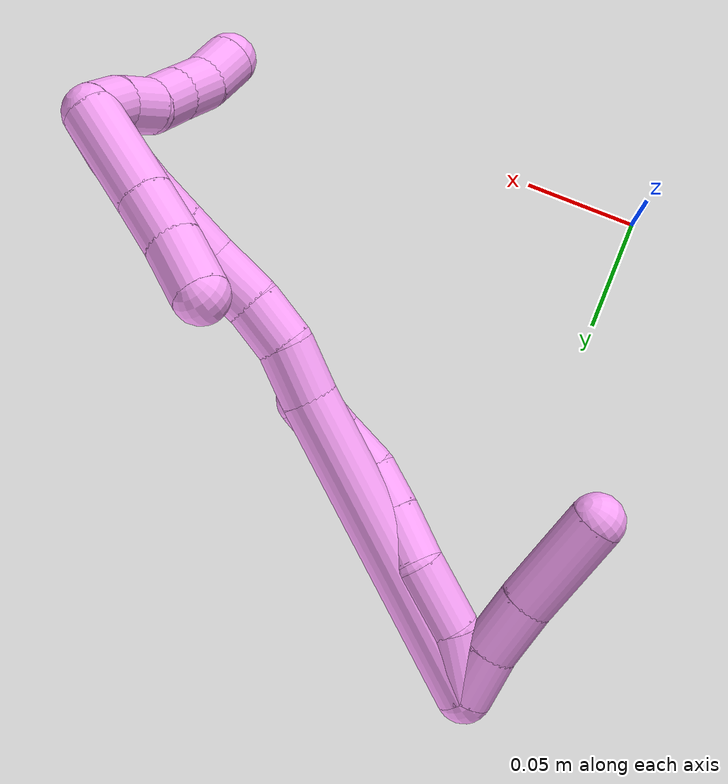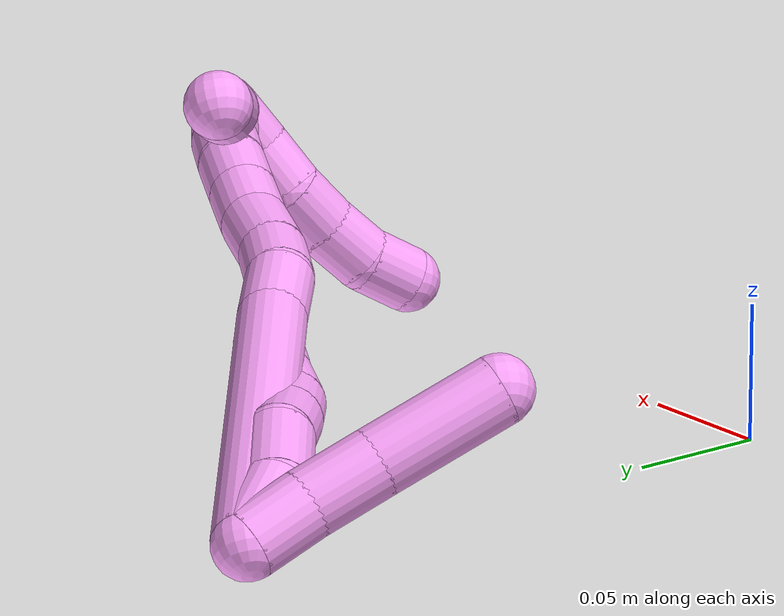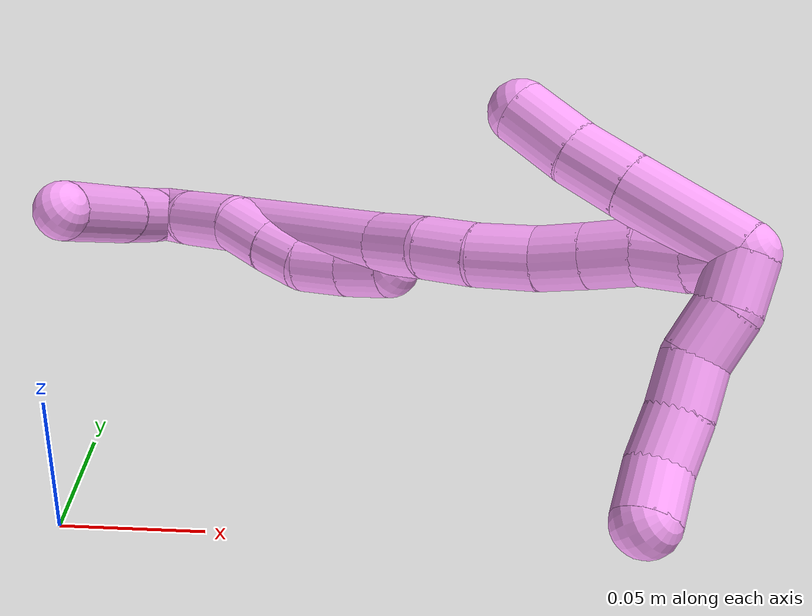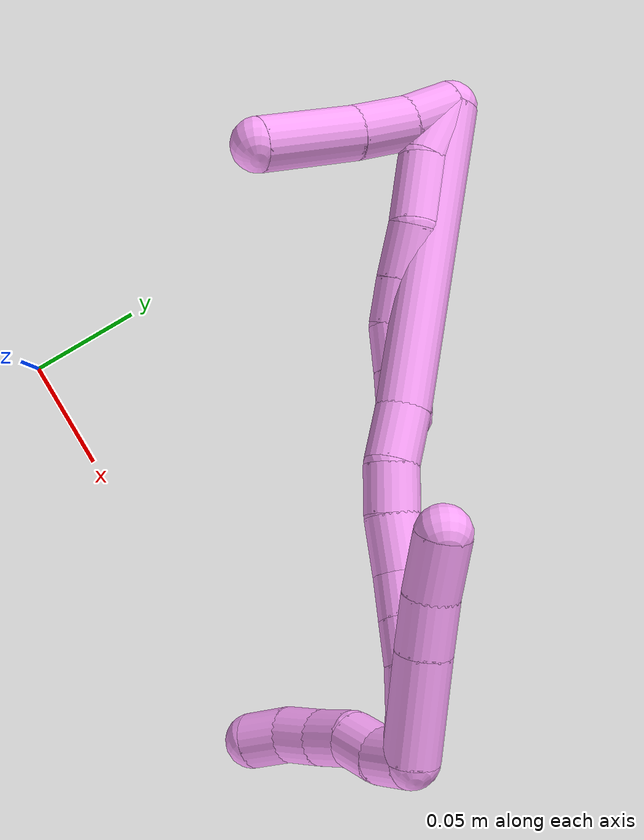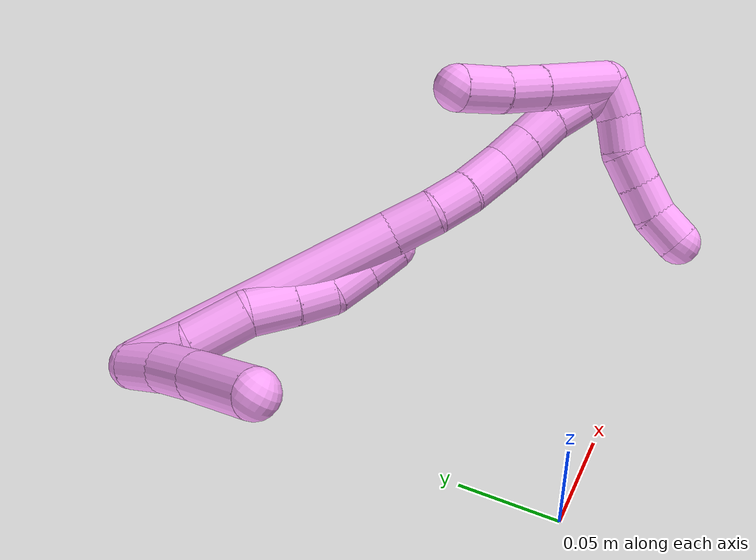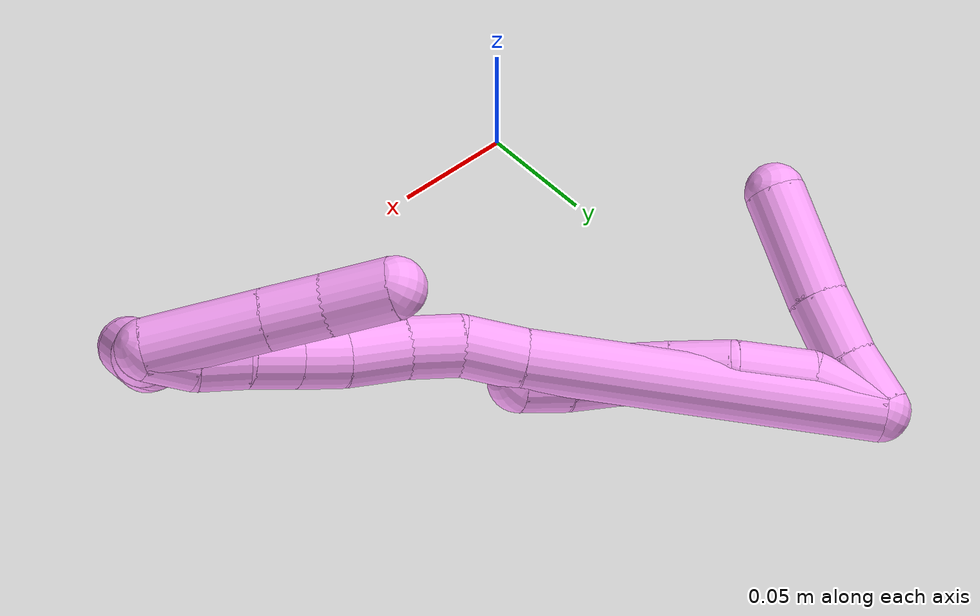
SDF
<sdf version="1.7">
 <world name="default">
  <model name="4">
   <static>0</static>
   <link name="4">
    <collision name="collision-cylinder-e_1_2_8">
     <pose>0.007924 -0.003938 0.012539 0.304307 0.542568 0.085248</pose>
     <geometry><cylinder><radius>0.0125</radius><length>0.030695</length></cylinder></geometry>
     <surface>
      <friction><ode><mu>1.16</mu><mu2>1.16</mu2><slip1>0</slip1><slip2>0</slip2></ode></friction>
      <contact><ode><kp>1e+06</kp><kd>1</kd><max_vel>0</max_vel><min_depth>0.001</min_depth></ode></contact>
     </surface>
    </collision>
    <visual name="visual-cylinder-e_1_2_8">
     <pose>0.007924 -0.003938 0.012539 0.304307 0.542568 0.085248</pose>
     <geometry><cylinder><radius>0.0125</radius><length>0.030695</length></cylinder></geometry>
     <material><ambient>1 0.65098 0.996078 1</ambient></material>
    </visual>
    <collision name="collision-cylinder-e_2_8_9">
     <pose>0.024287 -0.007247 0.038697 -0.046167 0.554264 -0.013134</pose>
     <geometry><cylinder><radius>0.0125</radius><length>0.032065</length></cylinder></geometry>
     <surface>
      <friction><ode><mu>1.16</mu><mu2>1.16</mu2><slip1>0</slip1><slip2>0</slip2></ode></friction>
      <contact><ode><kp>1e+06</kp><kd>1</kd><max_vel>0</max_vel><min_depth>0.001</min_depth></ode></contact>
     </surface>
    </collision>
    <visual name="visual-cylinder-e_2_8_9">
     <pose>0.024287 -0.007247 0.038697 -0.046167 0.554264 -0.013134</pose>
     <geometry><cylinder><radius>0.0125</radius><length>0.032065</length></cylinder></geometry>
     <material><ambient>1 0.65098 0.996078 1</ambient></material>
    </visual>
    <collision name="collision-cylinder-e_3_9_10">
     <pose>0.042171 -0.005565 0.060418 -0.129204 0.857644 -0.059136</pose>
     <geometry><cylinder><radius>0.0125</radius><length>0.024979</length></cylinder></geometry>
     <surface>
      <friction><ode><mu>1.16</mu><mu2>1.16</mu2><slip1>0</slip1><slip2>0</slip2></ode></friction>
      <contact><ode><kp>1e+06</kp><kd>1</kd><max_vel>0</max_vel><min_depth>0.001</min_depth></ode></contact>
     </surface>
    </collision>
    <visual name="visual-cylinder-e_3_9_10">
     <pose>0.042171 -0.005565 0.060418 -0.129204 0.857644 -0.059136</pose>
     <geometry><cylinder><radius>0.0125</radius><length>0.024979</length></cylinder></geometry>
     <material><ambient>1 0.65098 0.996078 1</ambient></material>
    </visual>
    <collision name="collision-cylinder-e_4_10_11">
     <pose>0.05901 -0.003227 0.075477 -0.182772 0.807366 -0.078248</pose>
     <geometry><cylinder><radius>0.0125</radius><length>0.020465</length></cylinder></geometry>
     <surface>
      <friction><ode><mu>1.16</mu><mu2>1.16</mu2><slip1>0</slip1><slip2>0</slip2></ode></friction>
      <contact><ode><kp>1e+06</kp><kd>1</kd><max_vel>0</max_vel><min_depth>0.001</min_depth></ode></contact>
     </surface>
    </collision>
    <visual name="visual-cylinder-e_4_10_11">
     <pose>0.05901 -0.003227 0.075477 -0.182772 0.807366 -0.078248</pose>
     <geometry><cylinder><radius>0.0125</radius><length>0.020465</length></cylinder></geometry>
     <material><ambient>1 0.65098 0.996078 1</ambient></material>
    </visual>
    <collision name="collision-cylinder-e_5_11_12">
     <pose>0.071676 0.001206 0.091283 -0.341664 0.511672 -0.090187</pose>
     <geometry><cylinder><radius>0.0125</radius><length>0.021541</length></cylinder></geometry>
     <surface>
      <friction><ode><mu>1.16</mu><mu2>1.16</mu2><slip1>0</slip1><slip2>0</slip2></ode></friction>
      <contact><ode><kp>1e+06</kp><kd>1</kd><max_vel>0</max_vel><min_depth>0.001</min_depth></ode></contact>
     </surface>
    </collision>
    <visual name="visual-cylinder-e_5_11_12">
     <pose>0.071676 0.001206 0.091283 -0.341664 0.511672 -0.090187</pose>
     <geometry><cylinder><radius>0.0125</radius><length>0.021541</length></cylinder></geometry>
     <material><ambient>1 0.65098 0.996078 1</ambient></material>
    </visual>
    <collision name="collision-cylinder-e_6_12_6">
     <pose>0.081335 0.006529 0.108996 -0.240727 0.447808 -0.055071</pose>
     <geometry><cylinder><radius>0.0125</radius><length>0.020254</length></cylinder></geometry>
     <surface>
      <friction><ode><mu>1.16</mu><mu2>1.16</mu2><slip1>0</slip1><slip2>0</slip2></ode></friction>
      <contact><ode><kp>1e+06</kp><kd>1</kd><max_vel>0</max_vel><min_depth>0.001</min_depth></ode></contact>
     </surface>
    </collision>
    <visual name="visual-cylinder-e_6_12_6">
     <pose>0.081335 0.006529 0.108996 -0.240727 0.447808 -0.055071</pose>
     <geometry><cylinder><radius>0.0125</radius><length>0.020254</length></cylinder></geometry>
     <material><ambient>1 0.65098 0.996078 1</ambient></material>
    </visual>
    <collision name="collision-cylinder-e_1_2_13">
     <pose>0.004255 -0.009838 0.005936 1.02791 0.354675 0.201675</pose>
     <geometry><cylinder><radius>0.0125</radius><length>0.024506</length></cylinder></geometry>
     <surface>
      <friction><ode><mu>1.16</mu><mu2>1.16</mu2><slip1>0</slip1><slip2>0</slip2></ode></friction>
      <contact><ode><kp>1e+06</kp><kd>1</kd><max_vel>0</max_vel><min_depth>0.001</min_depth></ode></contact>
     </surface>
    </collision>
    <visual name="visual-cylinder-e_1_2_13">
     <pose>0.004255 -0.009838 0.005936 1.02791 0.354675 0.201675</pose>
     <geometry><cylinder><radius>0.0125</radius><length>0.024506</length></cylinder></geometry>
     <material><ambient>1 0.65098 0.996078 1</ambient></material>
    </visual>
    <collision name="collision-cylinder-e_2_13_14">
     <pose>0.012377 -0.031673 0.017359 1.1418 0.28514 0.183859</pose>
     <geometry><cylinder><radius>0.0125</radius><length>0.027494</length></cylinder></geometry>
     <surface>
      <friction><ode><mu>1.16</mu><mu2>1.16</mu2><slip1>0</slip1><slip2>0</slip2></ode></friction>
      <contact><ode><kp>1e+06</kp><kd>1</kd><max_vel>0</max_vel><min_depth>0.001</min_depth></ode></contact>
     </surface>
    </collision>
    <visual name="visual-cylinder-e_2_13_14">
     <pose>0.012377 -0.031673 0.017359 1.1418 0.28514 0.183859</pose>
     <geometry><cylinder><radius>0.0125</radius><length>0.027494</length></cylinder></geometry>
     <material><ambient>1 0.65098 0.996078 1</ambient></material>
    </visual>
    <collision name="collision-cylinder-e_3_14_5">
     <pose>0.02192 -0.065247 0.031689 1.18185 0.238747 0.160594</pose>
     <geometry><cylinder><radius>0.0125</radius><length>0.048001</length></cylinder></geometry>
     <surface>
      <friction><ode><mu>1.16</mu><mu2>1.16</mu2><slip1>0</slip1><slip2>0</slip2></ode></friction>
      <contact><ode><kp>1e+06</kp><kd>1</kd><max_vel>0</max_vel><min_depth>0.001</min_depth></ode></contact>
     </surface>
    </collision>
    <visual name="visual-cylinder-e_3_14_5">
     <pose>0.02192 -0.065247 0.031689 1.18185 0.238747 0.160594</pose>
     <geometry><cylinder><radius>0.0125</radius><length>0.048001</length></cylinder></geometry>
     <material><ambient>1 0.65098 0.996078 1</ambient></material>
    </visual>
    <collision name="collision-cylinder-e_1_2_15">
     <pose>0.039034 0.001482 0.061894 -0.02394 0.562537 -0.006917</pose>
     <geometry><cylinder><radius>0.0125</radius><length>0.146379</length></cylinder></geometry>
     <surface>
      <friction><ode><mu>1.16</mu><mu2>1.16</mu2><slip1>0</slip1><slip2>0</slip2></ode></friction>
      <contact><ode><kp>1e+06</kp><kd>1</kd><max_vel>0</max_vel><min_depth>0.001</min_depth></ode></contact>
     </surface>
    </collision>
    <visual name="visual-cylinder-e_1_2_15">
     <pose>0.039034 0.001482 0.061894 -0.02394 0.562537 -0.006917</pose>
     <geometry><cylinder><radius>0.0125</radius><length>0.146379</length></cylinder></geometry>
     <material><ambient>1 0.65098 0.996078 1</ambient></material>
    </visual>
    <collision name="collision-cylinder-e_2_15_16">
     <pose>0.084555 0.002356 0.134689 0.055744 0.53599 0.015311</pose>
     <geometry><cylinder><radius>0.0125</radius><length>0.025399</length></cylinder></geometry>
     <surface>
      <friction><ode><mu>1.16</mu><mu2>1.16</mu2><slip1>0</slip1><slip2>0</slip2></ode></friction>
      <contact><ode><kp>1e+06</kp><kd>1</kd><max_vel>0</max_vel><min_depth>0.001</min_depth></ode></contact>
     </surface>
    </collision>
    <visual name="visual-cylinder-e_2_15_16">
     <pose>0.084555 0.002356 0.134689 0.055744 0.53599 0.015311</pose>
     <geometry><cylinder><radius>0.0125</radius><length>0.025399</length></cylinder></geometry>
     <material><ambient>1 0.65098 0.996078 1</ambient></material>
    </visual>
    <collision name="collision-cylinder-e_3_16_17">
     <pose>0.096997 0.004095 0.154752 -0.250914 0.562106 -0.072788</pose>
     <geometry><cylinder><radius>0.0125</radius><length>0.022353</length></cylinder></geometry>
     <surface>
      <friction><ode><mu>1.16</mu><mu2>1.16</mu2><slip1>0</slip1><slip2>0</slip2></ode></friction>
      <contact><ode><kp>1e+06</kp><kd>1</kd><max_vel>0</max_vel><min_depth>0.001</min_depth></ode></contact>
     </surface>
    </collision>
    <visual name="visual-cylinder-e_3_16_17">
     <pose>0.096997 0.004095 0.154752 -0.250914 0.562106 -0.072788</pose>
     <geometry><cylinder><radius>0.0125</radius><length>0.022353</length></cylinder></geometry>
     <material><ambient>1 0.65098 0.996078 1</ambient></material>
    </visual>
    <collision name="collision-cylinder-e_4_17_18">
     <pose>0.108809 0.01067 0.174636 -0.37547 0.470039 -0.090913</pose>
     <geometry><cylinder><radius>0.0125</radius><length>0.025858</length></cylinder></geometry>
     <surface>
      <friction><ode><mu>1.16</mu><mu2>1.16</mu2><slip1>0</slip1><slip2>0</slip2></ode></friction>
      <contact><ode><kp>1e+06</kp><kd>1</kd><max_vel>0</max_vel><min_depth>0.001</min_depth></ode></contact>
     </surface>
    </collision>
    <visual name="visual-cylinder-e_4_17_18">
     <pose>0.108809 0.01067 0.174636 -0.37547 0.470039 -0.090913</pose>
     <geometry><cylinder><radius>0.0125</radius><length>0.025858</length></cylinder></geometry>
     <material><ambient>1 0.65098 0.996078 1</ambient></material>
    </visual>
    <collision name="collision-cylinder-e_5_18_19">
     <pose>0.118371 0.017294 0.194335 -0.260927 0.379639 -0.050408</pose>
     <geometry><cylinder><radius>0.0125</radius><length>0.020003</length></cylinder></geometry>
     <surface>
      <friction><ode><mu>1.16</mu><mu2>1.16</mu2><slip1>0</slip1><slip2>0</slip2></ode></friction>
      <contact><ode><kp>1e+06</kp><kd>1</kd><max_vel>0</max_vel><min_depth>0.001</min_depth></ode></contact>
     </surface>
    </collision>
    <visual name="visual-cylinder-e_5_18_19">
     <pose>0.118371 0.017294 0.194335 -0.260927 0.379639 -0.050408</pose>
     <geometry><cylinder><radius>0.0125</radius><length>0.020003</length></cylinder></geometry>
     <material><ambient>1 0.65098 0.996078 1</ambient></material>
    </visual>
    <collision name="collision-cylinder-e_6_19_20">
     <pose>0.125623 0.021984 0.212378 -0.247763 0.362242 -0.045598</pose>
     <geometry><cylinder><radius>0.0125</radius><length>0.020007</length></cylinder></geometry>
     <surface>
      <friction><ode><mu>1.16</mu><mu2>1.16</mu2><slip1>0</slip1><slip2>0</slip2></ode></friction>
      <contact><ode><kp>1e+06</kp><kd>1</kd><max_vel>0</max_vel><min_depth>0.001</min_depth></ode></contact>
     </surface>
    </collision>
    <visual name="visual-cylinder-e_6_19_20">
     <pose>0.125623 0.021984 0.212378 -0.247763 0.362242 -0.045598</pose>
     <geometry><cylinder><radius>0.0125</radius><length>0.020007</length></cylinder></geometry>
     <material><ambient>1 0.65098 0.996078 1</ambient></material>
    </visual>
    <collision name="collision-cylinder-e_7_20_21">
     <pose>0.134437 0.026524 0.229644 -0.267356 0.555003 -0.076576</pose>
     <geometry><cylinder><radius>0.0125</radius><length>0.02</length></cylinder></geometry>
     <surface>
      <friction><ode><mu>1.16</mu><mu2>1.16</mu2><slip1>0</slip1><slip2>0</slip2></ode></friction>
      <contact><ode><kp>1e+06</kp><kd>1</kd><max_vel>0</max_vel><min_depth>0.001</min_depth></ode></contact>
     </surface>
    </collision>
    <visual name="visual-cylinder-e_7_20_21">
     <pose>0.134437 0.026524 0.229644 -0.267356 0.555003 -0.076576</pose>
     <geometry><cylinder><radius>0.0125</radius><length>0.02</length></cylinder></geometry>
     <material><ambient>1 0.65098 0.996078 1</ambient></material>
    </visual>
    <collision name="collision-cylinder-e_8_21_1">
     <pose>0.143538 0.028903 0.247078 -0.014473 0.39319 -0.002883</pose>
     <geometry><cylinder><radius>0.0125</radius><length>0.02</length></cylinder></geometry>
     <surface>
      <friction><ode><mu>1.16</mu><mu2>1.16</mu2><slip1>0</slip1><slip2>0</slip2></ode></friction>
      <contact><ode><kp>1e+06</kp><kd>1</kd><max_vel>0</max_vel><min_depth>0.001</min_depth></ode></contact>
     </surface>
    </collision>
    <visual name="visual-cylinder-e_8_21_1">
     <pose>0.143538 0.028903 0.247078 -0.014473 0.39319 -0.002883</pose>
     <geometry><cylinder><radius>0.0125</radius><length>0.02</length></cylinder></geometry>
     <material><ambient>1 0.65098 0.996078 1</ambient></material>
    </visual>
    <collision name="collision-cylinder-e_1_1_22">
     <pose>0.127946 0.022853 0.243739 2.68461 -0.945857 -2.2884</pose>
     <geometry><cylinder><radius>0.0125</radius><length>0.047902</length></cylinder></geometry>
     <surface>
      <friction><ode><mu>1.16</mu><mu2>1.16</mu2><slip1>0</slip1><slip2>0</slip2></ode></friction>
      <contact><ode><kp>1e+06</kp><kd>1</kd><max_vel>0</max_vel><min_depth>0.001</min_depth></ode></contact>
     </surface>
    </collision>
    <visual name="visual-cylinder-e_1_1_22">
     <pose>0.127946 0.022853 0.243739 2.68461 -0.945857 -2.2884</pose>
     <geometry><cylinder><radius>0.0125</radius><length>0.047902</length></cylinder></geometry>
     <material><ambient>1 0.65098 0.996078 1</ambient></material>
    </visual>
    <collision name="collision-cylinder-e_2_22_23">
     <pose>0.098394 0.013631 0.224729 2.7004 -0.95822 -2.32658</pose>
     <geometry><cylinder><radius>0.0125</radius><length>0.024756</length></cylinder></geometry>
     <surface>
      <friction><ode><mu>1.16</mu><mu2>1.16</mu2><slip1>0</slip1><slip2>0</slip2></ode></friction>
      <contact><ode><kp>1e+06</kp><kd>1</kd><max_vel>0</max_vel><min_depth>0.001</min_depth></ode></contact>
     </surface>
    </collision>
    <visual name="visual-cylinder-e_2_22_23">
     <pose>0.098394 0.013631 0.224729 2.7004 -0.95822 -2.32658</pose>
     <geometry><cylinder><radius>0.0125</radius><length>0.024756</length></cylinder></geometry>
     <material><ambient>1 0.65098 0.996078 1</ambient></material>
    </visual>
    <collision name="collision-cylinder-e_3_23_4">
     <pose>0.076401 0.007676 0.212162 2.69766 -1.0511 -2.39937</pose>
     <geometry><cylinder><radius>0.0125</radius><length>0.027342</length></cylinder></geometry>
     <surface>
      <friction><ode><mu>1.16</mu><mu2>1.16</mu2><slip1>0</slip1><slip2>0</slip2></ode></friction>
      <contact><ode><kp>1e+06</kp><kd>1</kd><max_vel>0</max_vel><min_depth>0.001</min_depth></ode></contact>
     </surface>
    </collision>
    <visual name="visual-cylinder-e_3_23_4">
     <pose>0.076401 0.007676 0.212162 2.69766 -1.0511 -2.39937</pose>
     <geometry><cylinder><radius>0.0125</radius><length>0.027342</length></cylinder></geometry>
     <material><ambient>1 0.65098 0.996078 1</ambient></material>
    </visual>
    <collision name="collision-cylinder-e_1_1_24">
     <pose>0.155297 0.026668 0.250696 2.7426 0.915195 2.36244</pose>
     <geometry><cylinder><radius>0.0125</radius><length>0.02</length></cylinder></geometry>
     <surface>
      <friction><ode><mu>1.16</mu><mu2>1.16</mu2><slip1>0</slip1><slip2>0</slip2></ode></friction>
      <contact><ode><kp>1e+06</kp><kd>1</kd><max_vel>0</max_vel><min_depth>0.001</min_depth></ode></contact>
     </surface>
    </collision>
    <visual name="visual-cylinder-e_1_1_24">
     <pose>0.155297 0.026668 0.250696 2.7426 0.915195 2.36244</pose>
     <geometry><cylinder><radius>0.0125</radius><length>0.02</length></cylinder></geometry>
     <material><ambient>1 0.65098 0.996078 1</ambient></material>
    </visual>
    <collision name="collision-cylinder-e_2_24_25">
     <pose>0.16915 0.021179 0.237653 2.7438 0.634358 2.04025</pose>
     <geometry><cylinder><radius>0.0125</radius><length>0.02</length></cylinder></geometry>
     <surface>
      <friction><ode><mu>1.16</mu><mu2>1.16</mu2><slip1>0</slip1><slip2>0</slip2></ode></friction>
      <contact><ode><kp>1e+06</kp><kd>1</kd><max_vel>0</max_vel><min_depth>0.001</min_depth></ode></contact>
     </surface>
    </collision>
    <visual name="visual-cylinder-e_2_24_25">
     <pose>0.16915 0.021179 0.237653 2.7438 0.634358 2.04025</pose>
     <geometry><cylinder><radius>0.0125</radius><length>0.02</length></cylinder></geometry>
     <material><ambient>1 0.65098 0.996078 1</ambient></material>
    </visual>
    <collision name="collision-cylinder-e_3_25_26">
     <pose>0.183259 0.015118 0.225288 2.60452 0.958333 2.16742</pose>
     <geometry><cylinder><radius>0.0125</radius><length>0.02</length></cylinder></geometry>
     <surface>
      <friction><ode><mu>1.16</mu><mu2>1.16</mu2><slip1>0</slip1><slip2>0</slip2></ode></friction>
      <contact><ode><kp>1e+06</kp><kd>1</kd><max_vel>0</max_vel><min_depth>0.001</min_depth></ode></contact>
     </surface>
    </collision>
    <visual name="visual-cylinder-e_3_25_26">
     <pose>0.183259 0.015118 0.225288 2.60452 0.958333 2.16742</pose>
     <geometry><cylinder><radius>0.0125</radius><length>0.02</length></cylinder></geometry>
     <material><ambient>1 0.65098 0.996078 1</ambient></material>
    </visual>
    <collision name="collision-cylinder-e_4_26_27">
     <pose>0.19916 0.008153 0.215426 2.45637 0.881761 1.84705</pose>
     <geometry><cylinder><radius>0.0125</radius><length>0.02</length></cylinder></geometry>
     <surface>
      <friction><ode><mu>1.16</mu><mu2>1.16</mu2><slip1>0</slip1><slip2>0</slip2></ode></friction>
      <contact><ode><kp>1e+06</kp><kd>1</kd><max_vel>0</max_vel><min_depth>0.001</min_depth></ode></contact>
     </surface>
    </collision>
    <visual name="visual-cylinder-e_4_26_27">
     <pose>0.19916 0.008153 0.215426 2.45637 0.881761 1.84705</pose>
     <geometry><cylinder><radius>0.0125</radius><length>0.02</length></cylinder></geometry>
     <material><ambient>1 0.65098 0.996078 1</ambient></material>
    </visual>
    <collision name="collision-cylinder-e_5_27_3">
     <pose>0.215093 -0.001019 0.208051 2.01527 0.963908 1.38378</pose>
     <geometry><cylinder><radius>0.0125</radius><length>0.02</length></cylinder></geometry>
     <surface>
      <friction><ode><mu>1.16</mu><mu2>1.16</mu2><slip1>0</slip1><slip2>0</slip2></ode></friction>
      <contact><ode><kp>1e+06</kp><kd>1</kd><max_vel>0</max_vel><min_depth>0.001</min_depth></ode></contact>
     </surface>
    </collision>
    <visual name="visual-cylinder-e_5_27_3">
     <pose>0.215093 -0.001019 0.208051 2.01527 0.963908 1.38378</pose>
     <geometry><cylinder><radius>0.0125</radius><length>0.02</length></cylinder></geometry>
     <material><ambient>1 0.65098 0.996078 1</ambient></material>
    </visual>
    <collision name="collision-sphere-3">
     <pose>0.223307 -0.006168 0.205598 0 -0 0</pose>
     <geometry><sphere><radius>0.0125</radius></sphere></geometry>
     <surface>
      <friction><ode><mu>1.16</mu><mu2>1.16</mu2><slip1>0</slip1><slip2>0</slip2></ode></friction>
      <contact><ode><kp>1e+06</kp><kd>1</kd><max_vel>0</max_vel><min_depth>0.001</min_depth></ode></contact>
     </surface>
    </collision>
    <visual name="visual-sphere-3">
     <pose>0.223307 -0.006168 0.205598 0 -0 0</pose>
     <geometry><sphere><radius>0.0125</radius></sphere></geometry>
     <material><ambient>1 0.65098 0.996078 1</ambient></material>
    </visual>
    <collision name="collision-sphere-27">
     <pose>0.206879 0.00413 0.210503 0 -0 0</pose>
     <geometry><sphere><radius>0.0125</radius></sphere></geometry>
     <surface>
      <friction><ode><mu>1.16</mu><mu2>1.16</mu2><slip1>0</slip1><slip2>0</slip2></ode></friction>
      <contact><ode><kp>1e+06</kp><kd>1</kd><max_vel>0</max_vel><min_depth>0.001</min_depth></ode></contact>
     </surface>
    </collision>
    <visual name="visual-sphere-27">
     <pose>0.206879 0.00413 0.210503 0 -0 0</pose>
     <geometry><sphere><radius>0.0125</radius></sphere></geometry>
     <material><ambient>1 0.65098 0.996078 1</ambient></material>
    </visual>
    <collision name="collision-sphere-26">
     <pose>0.191441 0.012177 0.220348 0 -0 0</pose>
     <geometry><sphere><radius>0.0125</radius></sphere></geometry>
     <surface>
      <friction><ode><mu>1.16</mu><mu2>1.16</mu2><slip1>0</slip1><slip2>0</slip2></ode></friction>
      <contact><ode><kp>1e+06</kp><kd>1</kd><max_vel>0</max_vel><min_depth>0.001</min_depth></ode></contact>
     </surface>
    </collision>
    <visual name="visual-sphere-26">
     <pose>0.191441 0.012177 0.220348 0 -0 0</pose>
     <geometry><sphere><radius>0.0125</radius></sphere></geometry>
     <material><ambient>1 0.65098 0.996078 1</ambient></material>
    </visual>
    <collision name="collision-sphere-25">
     <pose>0.175077 0.018059 0.230227 0 -0 0</pose>
     <geometry><sphere><radius>0.0125</radius></sphere></geometry>
     <surface>
      <friction><ode><mu>1.16</mu><mu2>1.16</mu2><slip1>0</slip1><slip2>0</slip2></ode></friction>
      <contact><ode><kp>1e+06</kp><kd>1</kd><max_vel>0</max_vel><min_depth>0.001</min_depth></ode></contact>
     </surface>
    </collision>
    <visual name="visual-sphere-25">
     <pose>0.175077 0.018059 0.230227 0 -0 0</pose>
     <geometry><sphere><radius>0.0125</radius></sphere></geometry>
     <material><ambient>1 0.65098 0.996078 1</ambient></material>
    </visual>
    <collision name="collision-sphere-24">
     <pose>0.163223 0.0243 0.245079 0 -0 0</pose>
     <geometry><sphere><radius>0.0125</radius></sphere></geometry>
     <surface>
      <friction><ode><mu>1.16</mu><mu2>1.16</mu2><slip1>0</slip1><slip2>0</slip2></ode></friction>
      <contact><ode><kp>1e+06</kp><kd>1</kd><max_vel>0</max_vel><min_depth>0.001</min_depth></ode></contact>
     </surface>
    </collision>
    <visual name="visual-sphere-24">
     <pose>0.163223 0.0243 0.245079 0 -0 0</pose>
     <geometry><sphere><radius>0.0125</radius></sphere></geometry>
     <material><ambient>1 0.65098 0.996078 1</ambient></material>
    </visual>
    <collision name="collision-sphere-4">
     <pose>0.064535 0.00476 0.206031 0 -0 0</pose>
     <geometry><sphere><radius>0.0125</radius></sphere></geometry>
     <surface>
      <friction><ode><mu>1.16</mu><mu2>1.16</mu2><slip1>0</slip1><slip2>0</slip2></ode></friction>
      <contact><ode><kp>1e+06</kp><kd>1</kd><max_vel>0</max_vel><min_depth>0.001</min_depth></ode></contact>
     </surface>
    </collision>
    <visual name="visual-sphere-4">
     <pose>0.064535 0.00476 0.206031 0 -0 0</pose>
     <geometry><sphere><radius>0.0125</radius></sphere></geometry>
     <material><ambient>1 0.65098 0.996078 1</ambient></material>
    </visual>
    <collision name="collision-sphere-23">
     <pose>0.088267 0.010592 0.218293 0 -0 0</pose>
     <geometry><sphere><radius>0.0125</radius></sphere></geometry>
     <surface>
      <friction><ode><mu>1.16</mu><mu2>1.16</mu2><slip1>0</slip1><slip2>0</slip2></ode></friction>
      <contact><ode><kp>1e+06</kp><kd>1</kd><max_vel>0</max_vel><min_depth>0.001</min_depth></ode></contact>
     </surface>
    </collision>
    <visual name="visual-sphere-23">
     <pose>0.088267 0.010592 0.218293 0 -0 0</pose>
     <geometry><sphere><radius>0.0125</radius></sphere></geometry>
     <material><ambient>1 0.65098 0.996078 1</ambient></material>
    </visual>
    <collision name="collision-sphere-22">
     <pose>0.108522 0.016671 0.231165 0 -0 0</pose>
     <geometry><sphere><radius>0.0125</radius></sphere></geometry>
     <surface>
      <friction><ode><mu>1.16</mu><mu2>1.16</mu2><slip1>0</slip1><slip2>0</slip2></ode></friction>
      <contact><ode><kp>1e+06</kp><kd>1</kd><max_vel>0</max_vel><min_depth>0.001</min_depth></ode></contact>
     </surface>
    </collision>
    <visual name="visual-sphere-22">
     <pose>0.108522 0.016671 0.231165 0 -0 0</pose>
     <geometry><sphere><radius>0.0125</radius></sphere></geometry>
     <material><ambient>1 0.65098 0.996078 1</ambient></material>
    </visual>
    <collision name="collision-sphere-1">
     <pose>0.14737 0.029036 0.256314 0 -0 0</pose>
     <geometry><sphere><radius>0.0125</radius></sphere></geometry>
     <surface>
      <friction><ode><mu>1.16</mu><mu2>1.16</mu2><slip1>0</slip1><slip2>0</slip2></ode></friction>
      <contact><ode><kp>1e+06</kp><kd>1</kd><max_vel>0</max_vel><min_depth>0.001</min_depth></ode></contact>
     </surface>
    </collision>
    <visual name="visual-sphere-1">
     <pose>0.14737 0.029036 0.256314 0 -0 0</pose>
     <geometry><sphere><radius>0.0125</radius></sphere></geometry>
     <material><ambient>1 0.65098 0.996078 1</ambient></material>
    </visual>
    <collision name="collision-sphere-21">
     <pose>0.139707 0.028769 0.237842 0 -0 0</pose>
     <geometry><sphere><radius>0.0125</radius></sphere></geometry>
     <surface>
      <friction><ode><mu>1.16</mu><mu2>1.16</mu2><slip1>0</slip1><slip2>0</slip2></ode></friction>
      <contact><ode><kp>1e+06</kp><kd>1</kd><max_vel>0</max_vel><min_depth>0.001</min_depth></ode></contact>
     </surface>
    </collision>
    <visual name="visual-sphere-21">
     <pose>0.139707 0.028769 0.237842 0 -0 0</pose>
     <geometry><sphere><radius>0.0125</radius></sphere></geometry>
     <material><ambient>1 0.65098 0.996078 1</ambient></material>
    </visual>
    <collision name="collision-sphere-12">
     <pose>0.07695 0.004352 0.100131 0 -0 0</pose>
     <geometry><sphere><radius>0.0125</radius></sphere></geometry>
     <surface>
      <friction><ode><mu>1.16</mu><mu2>1.16</mu2><slip1>0</slip1><slip2>0</slip2></ode></friction>
      <contact><ode><kp>1e+06</kp><kd>1</kd><max_vel>0</max_vel><min_depth>0.001</min_depth></ode></contact>
     </surface>
    </collision>
    <visual name="visual-sphere-12">
     <pose>0.07695 0.004352 0.100131 0 -0 0</pose>
     <geometry><sphere><radius>0.0125</radius></sphere></geometry>
     <material><ambient>1 0.65098 0.996078 1</ambient></material>
    </visual>
    <collision name="collision-sphere-11">
     <pose>0.066403 -0.001941 0.082434 0 -0 0</pose>
     <geometry><sphere><radius>0.0125</radius></sphere></geometry>
     <surface>
      <friction><ode><mu>1.16</mu><mu2>1.16</mu2><slip1>0</slip1><slip2>0</slip2></ode></friction>
      <contact><ode><kp>1e+06</kp><kd>1</kd><max_vel>0</max_vel><min_depth>0.001</min_depth></ode></contact>
     </surface>
    </collision>
    <visual name="visual-sphere-11">
     <pose>0.066403 -0.001941 0.082434 0 -0 0</pose>
     <geometry><sphere><radius>0.0125</radius></sphere></geometry>
     <material><ambient>1 0.65098 0.996078 1</ambient></material>
    </visual>
    <collision name="collision-sphere-10">
     <pose>0.051617 -0.004512 0.06852 0 -0 0</pose>
     <geometry><sphere><radius>0.0125</radius></sphere></geometry>
     <surface>
      <friction><ode><mu>1.16</mu><mu2>1.16</mu2><slip1>0</slip1><slip2>0</slip2></ode></friction>
      <contact><ode><kp>1e+06</kp><kd>1</kd><max_vel>0</max_vel><min_depth>0.001</min_depth></ode></contact>
     </surface>
    </collision>
    <visual name="visual-sphere-10">
     <pose>0.051617 -0.004512 0.06852 0 -0 0</pose>
     <geometry><sphere><radius>0.0125</radius></sphere></geometry>
     <material><ambient>1 0.65098 0.996078 1</ambient></material>
    </visual>
    <collision name="collision-sphere-9">
     <pose>0.032725 -0.006618 0.052315 0 -0 0</pose>
     <geometry><sphere><radius>0.0125</radius></sphere></geometry>
     <surface>
      <friction><ode><mu>1.16</mu><mu2>1.16</mu2><slip1>0</slip1><slip2>0</slip2></ode></friction>
      <contact><ode><kp>1e+06</kp><kd>1</kd><max_vel>0</max_vel><min_depth>0.001</min_depth></ode></contact>
     </surface>
    </collision>
    <visual name="visual-sphere-9">
     <pose>0.032725 -0.006618 0.052315 0 -0 0</pose>
     <geometry><sphere><radius>0.0125</radius></sphere></geometry>
     <material><ambient>1 0.65098 0.996078 1</ambient></material>
    </visual>
    <collision name="collision-sphere-2">
     <geometry><sphere><radius>0.0125</radius></sphere></geometry>
     <surface>
      <friction><ode><mu>1.16</mu><mu2>1.16</mu2><slip1>0</slip1><slip2>0</slip2></ode></friction>
      <contact><ode><kp>1e+06</kp><kd>1</kd><max_vel>0</max_vel><min_depth>0.001</min_depth></ode></contact>
     </surface>
    </collision>
    <visual name="visual-sphere-2">
     <geometry><sphere><radius>0.0125</radius></sphere></geometry>
     <material><ambient>1 0.65098 0.996078 1</ambient></material>
    </visual>
    <collision name="collision-sphere-19">
     <pose>0.122078 0.01969 0.203309 0 -0 0</pose>
     <geometry><sphere><radius>0.0125</radius></sphere></geometry>
     <surface>
      <friction><ode><mu>1.16</mu><mu2>1.16</mu2><slip1>0</slip1><slip2>0</slip2></ode></friction>
      <contact><ode><kp>1e+06</kp><kd>1</kd><max_vel>0</max_vel><min_depth>0.001</min_depth></ode></contact>
     </surface>
    </collision>
    <visual name="visual-sphere-19">
     <pose>0.122078 0.01969 0.203309 0 -0 0</pose>
     <geometry><sphere><radius>0.0125</radius></sphere></geometry>
     <material><ambient>1 0.65098 0.996078 1</ambient></material>
    </visual>
    <collision name="collision-sphere-8">
     <pose>0.015849 -0.007876 0.025079 0 -0 0</pose>
     <geometry><sphere><radius>0.0125</radius></sphere></geometry>
     <surface>
      <friction><ode><mu>1.16</mu><mu2>1.16</mu2><slip1>0</slip1><slip2>0</slip2></ode></friction>
      <contact><ode><kp>1e+06</kp><kd>1</kd><max_vel>0</max_vel><min_depth>0.001</min_depth></ode></contact>
     </surface>
    </collision>
    <visual name="visual-sphere-8">
     <pose>0.015849 -0.007876 0.025079 0 -0 0</pose>
     <geometry><sphere><radius>0.0125</radius></sphere></geometry>
     <material><ambient>1 0.65098 0.996078 1</ambient></material>
    </visual>
    <collision name="collision-sphere-6">
     <pose>0.08572 0.008705 0.117862 0 -0 0</pose>
     <geometry><sphere><radius>0.0125</radius></sphere></geometry>
     <surface>
      <friction><ode><mu>1.16</mu><mu2>1.16</mu2><slip1>0</slip1><slip2>0</slip2></ode></friction>
      <contact><ode><kp>1e+06</kp><kd>1</kd><max_vel>0</max_vel><min_depth>0.001</min_depth></ode></contact>
     </surface>
    </collision>
    <visual name="visual-sphere-6">
     <pose>0.08572 0.008705 0.117862 0 -0 0</pose>
     <geometry><sphere><radius>0.0125</radius></sphere></geometry>
     <material><ambient>1 0.65098 0.996078 1</ambient></material>
    </visual>
    <collision name="collision-sphere-13">
     <pose>0.00851 -0.019676 0.011872 0 -0 0</pose>
     <geometry><sphere><radius>0.0125</radius></sphere></geometry>
     <surface>
      <friction><ode><mu>1.16</mu><mu2>1.16</mu2><slip1>0</slip1><slip2>0</slip2></ode></friction>
      <contact><ode><kp>1e+06</kp><kd>1</kd><max_vel>0</max_vel><min_depth>0.001</min_depth></ode></contact>
     </surface>
    </collision>
    <visual name="visual-sphere-13">
     <pose>0.00851 -0.019676 0.011872 0 -0 0</pose>
     <geometry><sphere><radius>0.0125</radius></sphere></geometry>
     <material><ambient>1 0.65098 0.996078 1</ambient></material>
    </visual>
    <collision name="collision-sphere-14">
     <pose>0.016244 -0.043669 0.022846 0 -0 0</pose>
     <geometry><sphere><radius>0.0125</radius></sphere></geometry>
     <surface>
      <friction><ode><mu>1.16</mu><mu2>1.16</mu2><slip1>0</slip1><slip2>0</slip2></ode></friction>
      <contact><ode><kp>1e+06</kp><kd>1</kd><max_vel>0</max_vel><min_depth>0.001</min_depth></ode></contact>
     </surface>
    </collision>
    <visual name="visual-sphere-14">
     <pose>0.016244 -0.043669 0.022846 0 -0 0</pose>
     <geometry><sphere><radius>0.0125</radius></sphere></geometry>
     <material><ambient>1 0.65098 0.996078 1</ambient></material>
    </visual>
    <collision name="collision-sphere-5">
     <pose>0.027596 -0.086825 0.040533 0 -0 0</pose>
     <geometry><sphere><radius>0.0125</radius></sphere></geometry>
     <surface>
      <friction><ode><mu>1.16</mu><mu2>1.16</mu2><slip1>0</slip1><slip2>0</slip2></ode></friction>
      <contact><ode><kp>1e+06</kp><kd>1</kd><max_vel>0</max_vel><min_depth>0.001</min_depth></ode></contact>
     </surface>
    </collision>
    <visual name="visual-sphere-5">
     <pose>0.027596 -0.086825 0.040533 0 -0 0</pose>
     <geometry><sphere><radius>0.0125</radius></sphere></geometry>
     <material><ambient>1 0.65098 0.996078 1</ambient></material>
    </visual>
    <collision name="collision-sphere-15">
     <pose>0.078069 0.002964 0.123787 0 -0 0</pose>
     <geometry><sphere><radius>0.0125</radius></sphere></geometry>
     <surface>
      <friction><ode><mu>1.16</mu><mu2>1.16</mu2><slip1>0</slip1><slip2>0</slip2></ode></friction>
      <contact><ode><kp>1e+06</kp><kd>1</kd><max_vel>0</max_vel><min_depth>0.001</min_depth></ode></contact>
     </surface>
    </collision>
    <visual name="visual-sphere-15">
     <pose>0.078069 0.002964 0.123787 0 -0 0</pose>
     <geometry><sphere><radius>0.0125</radius></sphere></geometry>
     <material><ambient>1 0.65098 0.996078 1</ambient></material>
    </visual>
    <collision name="collision-sphere-16">
     <pose>0.09104 0.001747 0.145591 0 -0 0</pose>
     <geometry><sphere><radius>0.0125</radius></sphere></geometry>
     <surface>
      <friction><ode><mu>1.16</mu><mu2>1.16</mu2><slip1>0</slip1><slip2>0</slip2></ode></friction>
      <contact><ode><kp>1e+06</kp><kd>1</kd><max_vel>0</max_vel><min_depth>0.001</min_depth></ode></contact>
     </surface>
    </collision>
    <visual name="visual-sphere-16">
     <pose>0.09104 0.001747 0.145591 0 -0 0</pose>
     <geometry><sphere><radius>0.0125</radius></sphere></geometry>
     <material><ambient>1 0.65098 0.996078 1</ambient></material>
    </visual>
    <collision name="collision-sphere-17">
     <pose>0.102954 0.006443 0.163912 0 -0 0</pose>
     <geometry><sphere><radius>0.0125</radius></sphere></geometry>
     <surface>
      <friction><ode><mu>1.16</mu><mu2>1.16</mu2><slip1>0</slip1><slip2>0</slip2></ode></friction>
      <contact><ode><kp>1e+06</kp><kd>1</kd><max_vel>0</max_vel><min_depth>0.001</min_depth></ode></contact>
     </surface>
    </collision>
    <visual name="visual-sphere-17">
     <pose>0.102954 0.006443 0.163912 0 -0 0</pose>
     <geometry><sphere><radius>0.0125</radius></sphere></geometry>
     <material><ambient>1 0.65098 0.996078 1</ambient></material>
    </visual>
    <collision name="collision-sphere-18">
     <pose>0.114665 0.014897 0.18536 0 -0 0</pose>
     <geometry><sphere><radius>0.0125</radius></sphere></geometry>
     <surface>
      <friction><ode><mu>1.16</mu><mu2>1.16</mu2><slip1>0</slip1><slip2>0</slip2></ode></friction>
      <contact><ode><kp>1e+06</kp><kd>1</kd><max_vel>0</max_vel><min_depth>0.001</min_depth></ode></contact>
     </surface>
    </collision>
    <visual name="visual-sphere-18">
     <pose>0.114665 0.014897 0.18536 0 -0 0</pose>
     <geometry><sphere><radius>0.0125</radius></sphere></geometry>
     <material><ambient>1 0.65098 0.996078 1</ambient></material>
    </visual>
    <collision name="collision-sphere-20">
     <pose>0.129168 0.024278 0.221447 0 -0 0</pose>
     <geometry><sphere><radius>0.0125</radius></sphere></geometry>
     <surface>
      <friction><ode><mu>1.16</mu><mu2>1.16</mu2><slip1>0</slip1><slip2>0</slip2></ode></friction>
      <contact><ode><kp>1e+06</kp><kd>1</kd><max_vel>0</max_vel><min_depth>0.001</min_depth></ode></contact>
     </surface>
    </collision>
    <visual name="visual-sphere-20">
     <pose>0.129168 0.024278 0.221447 0 -0 0</pose>
     <geometry><sphere><radius>0.0125</radius></sphere></geometry>
     <material><ambient>1 0.65098 0.996078 1</ambient></material>
    </visual>
    <inertial>
     <pose>0.080464 0.001252 0.126542 0 -0 0</pose>
     <mass>0.75</mass>
     <inertia>
      <ixx>0.000274</ixx>
      <ixy>0</ixy>
      <ixz>0</ixz>
      <iyy>0.000309</iyy>
      <iyz>0</iyz>
      <izz>-0.000116</izz>
     </inertia>
    </inertial>
   </link>
   <pose>-0.00569 0.224888 0.011737 -0.498349 0.688807 -1.14907</pose>
  </model>
 </world>
</sdf>
